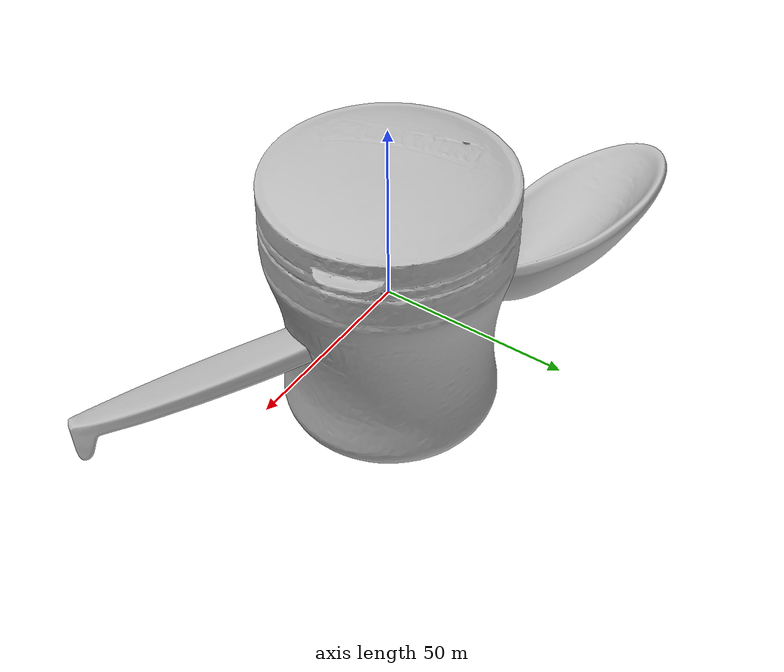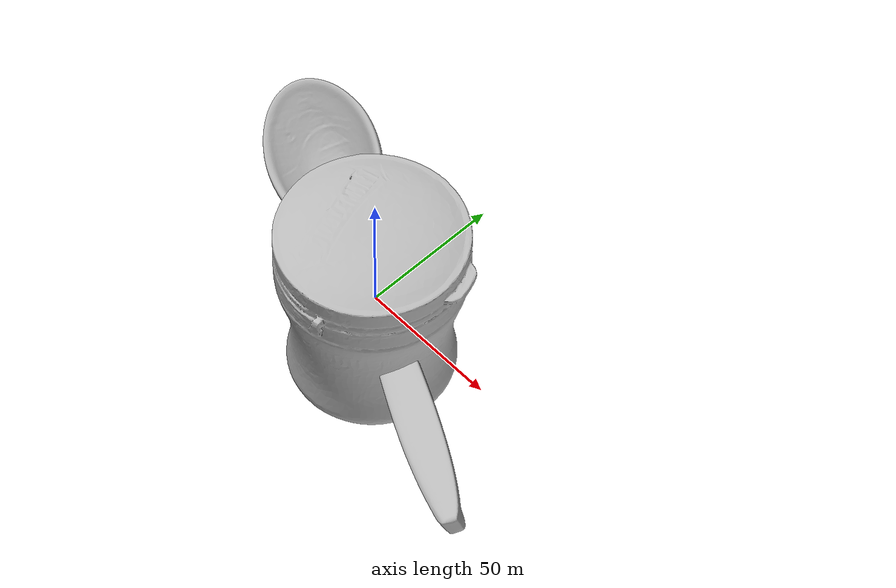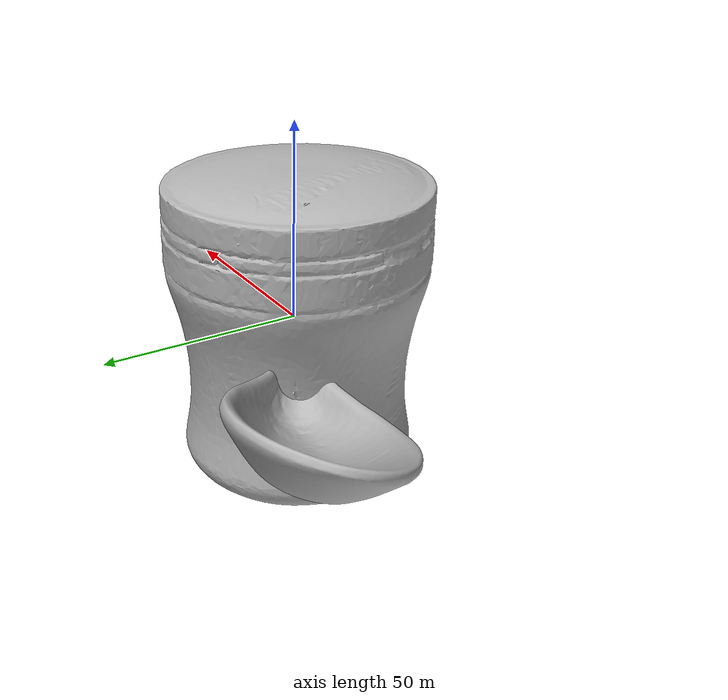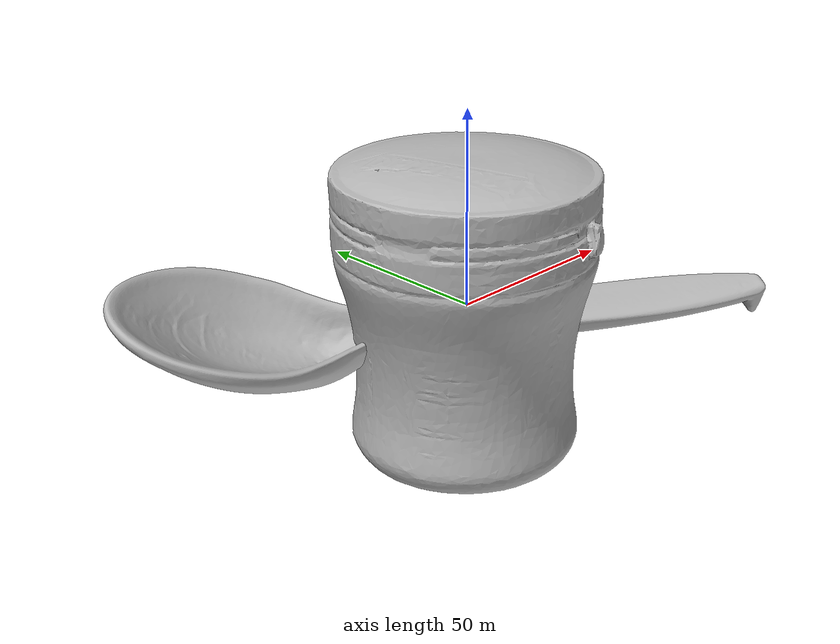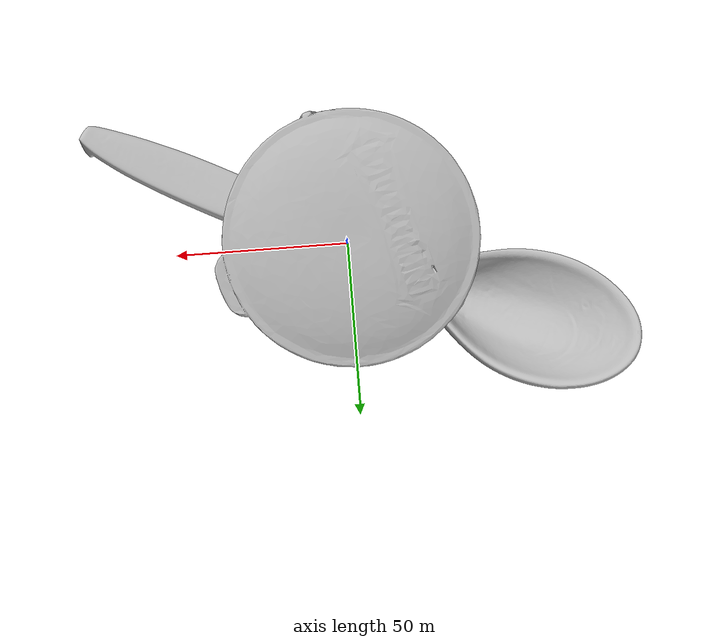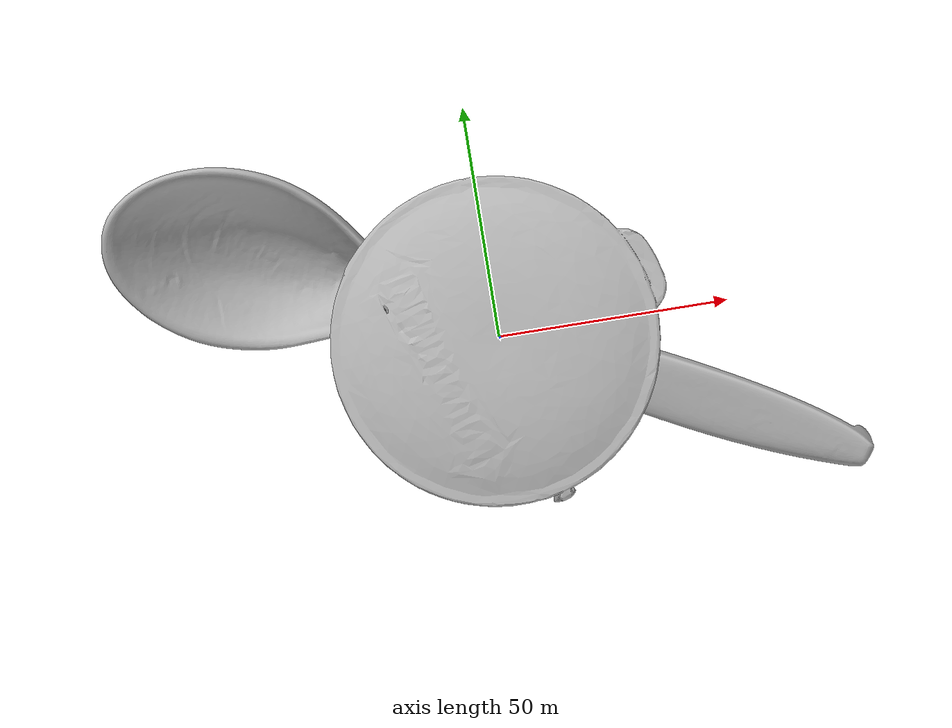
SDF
<sdf version="1.4">
 <world name="default">
  <light name="light1" type="point">
   <pose>0 0 1 0 0 0</pose>
   <diffuse>3 3 3 1</diffuse>
   <specular>3 3 3 1</specular>
  </light>
  <light name="light2" type="point">
   <pose>0 0.5 2 0 0 0</pose>
   <diffuse>1 1 1 1</diffuse>
   <specular>1 1 1 1</specular>
  </light>
  <light name="light3" type="point">
   <pose>0 0.5 2 0 0 0</pose>
   <diffuse>3 3 3 1</diffuse>
   <specular>3 3 3 1</specular>
  </light>
  <scene><ambient>0.7 0.7 0.7</ambient></scene>
  <model name="bottle1">
   <link name="link_bottle1">
    <collision name="default">
     <geometry>
      <mesh><uri>model://green_arrow/collision_meshes/collision.obj</uri><scale>1.0 1.0 1.0</scale></mesh>
     </geometry>
     <surface>
      <friction><ode><mu>0.5</mu><mu2>0.5</mu2></ode></friction>
      <contact><ode><max_vel>0</max_vel><min_depth>0.0001</min_depth><kp>1e8</kp></ode></contact>
     </surface>
    </collision>
    <visual name="default">
     <geometry>
      <mesh><uri>model://green_arrow/visual_meshes/visual.dae</uri><scale>1.0 1.0 1.0</scale></mesh>
     </geometry>
    </visual>
    <inertial>
     <mass>0.31872013211250305</mass>
     <pose>0.0005358478520065546 -0.0008270691032521427 0.002210969803854823 -0.06332250060756175 0.012985582117300467 0.6741007804522225</pose>
     <inertia>
      <ixx>0.00023120124</ixx>
      <iyy>0.000230851</iyy>
      <izz>0.0001492862</izz>
      <ixy>0</ixy>
      <ixz>0</ixz>
      <iyz>0</iyz>
     </inertia>
    </inertial>
   </link>
   <pose>0.048687029629945755 -0.30379530787467957 0.03903084248304367 0.03851800491375175 0.024629492233197044 -1.9643992629102922</pose>
  </model>
  <model name="bottle2">
   <link name="link_bottle2">
    <collision name="default">
     <geometry>
      <mesh><uri>model://pigeon/collision_meshes/collision.obj</uri><scale>1.0 1.0 1.0</scale></mesh>
     </geometry>
     <surface>
      <friction><ode><mu>0.5</mu><mu2>0.5</mu2></ode></friction>
      <contact><ode><max_vel>0</max_vel><min_depth>0.0001</min_depth><kp>1e8</kp></ode></contact>
     </surface>
    </collision>
    <visual name="default">
     <geometry><mesh><uri>model://pigeon/visual_meshes/visual.dae</uri><scale>1.0 1.0 1.0</scale></mesh></geometry>
    </visual>
    <inertial>
     <mass>0.5279804468154907</mass>
     <pose>-9.675472392700613e-05 -0.0001927677367348224 -0.01593620702624321 -0.011704407495178063 -0.0012978199512556723 -0.04198835484465517</pose>
     <inertia>
      <ixx>0.0013198232</ixx>
      <iyy>0.0014089285</iyy>
      <izz>0.000271492</izz>
      <ixy>0</ixy>
      <ixz>0</ixz>
      <iyz>0</iyz>
     </inertia>
    </inertial>
   </link>
   <pose>0.24912244081497192 0.07256945222616196 0.09864645451307297 0.005024309572796868 0.0018165971749170486 1.221134937027898</pose>
  </model>
  <model name="silverware1">
   <link name="link_silverware1">
    <collision name="default">
     <geometry>
      <mesh><uri>model://doraemon_spoon/collision_meshes/collision.obj</uri><scale>1.0 1.0 1.0</scale></mesh>
     </geometry>
     <surface>
      <friction><ode><mu>0.5</mu><mu2>0.5</mu2></ode></friction>
      <contact><ode><max_vel>0</max_vel><min_depth>0.0001</min_depth><kp>1e8</kp></ode></contact>
     </surface>
    </collision>
    <visual name="default">
     <geometry>
      <mesh><uri>model://doraemon_spoon/visual_meshes/visual.dae</uri><scale>1.0 1.0 1.0</scale></mesh>
     </geometry>
    </visual>
    <inertial>
     <mass>0.014849366620182991</mass>
     <pose>-0.022165074944496155 -0.0006374582299031317 -0.0033325457479804754 -0.009146985479672626 0.07380416127774835 -0.014123827206003371</pose>
     <inertia>
      <ixx>1.1631438e-06</ixx>
      <iyy>3.3035012e-05</iyy>
      <izz>3.359665e-05</izz>
      <ixy>0</ixy>
      <ixz>0</ixz>
      <iyz>0</iyz>
     </inertia>
    </inertial>
   </link>
   <pose>0.1741865873336792 0.0007276618853211403 0.01473937276750803 0.2787954337093107 -0.010334961356118787 -0.46457956648837406</pose>
  </model>
  <model name="stationery1">
   <link name="link_stationery1">
    <collision name="default">
     <geometry>
      <mesh><uri>model://correction_fuid/collision_meshes/collision.obj</uri><scale>1.0 1.0 1.0</scale></mesh>
     </geometry>
     <surface>
      <friction><ode><mu>0.5</mu><mu2>0.5</mu2></ode></friction>
      <contact><ode><max_vel>0</max_vel><min_depth>0.0001</min_depth><kp>1e8</kp></ode></contact>
     </surface>
    </collision>
    <visual name="default">
     <geometry>
      <mesh><uri>model://correction_fuid/visual_meshes/visual.dae</uri><scale>1.0 1.0 1.0</scale></mesh>
     </geometry>
    </visual>
    <inertial>
     <mass>0.03422689810395241</mass>
     <pose>-0.00012557733862195164 -0.0009722901741042733 -0.001618212671019137 -0.010846609605282003 0.019488228935667613 -0.015992456651572746</pose>
     <inertia>
      <ixx>3.3149332e-05</ixx>
      <iyy>2.0062398e-06</iyy>
      <izz>3.4012115e-05</izz>
      <ixy>0</ixy>
      <ixz>0</ixz>
      <iyz>0</iyz>
     </inertia>
    </inertial>
   </link>
   <pose>0.05407095327973366 0.1362382173538208 0.009632826782763004 -0.0017272055886529266 -0.0561684481214638 -0.38770181459443376</pose>
  </model>
  <model name="bowl1">
   <link name="link_bowl1">
    <collision name="default">
     <geometry>
      <mesh><uri>model://doraemon_bowl/collision_meshes/collision.obj</uri><scale>1.0 1.0 1.0</scale></mesh>
     </geometry>
     <surface>
      <friction><ode><mu>0.5</mu><mu2>0.5</mu2></ode></friction>
      <contact><ode><max_vel>0</max_vel><min_depth>0.0001</min_depth><kp>1e8</kp></ode></contact>
     </surface>
    </collision>
    <visual name="default">
     <geometry>
      <mesh><uri>model://doraemon_bowl/visual_meshes/visual.dae</uri><scale>1.0 1.0 1.0</scale></mesh>
     </geometry>
    </visual>
    <inertial>
     <mass>0.10659078508615494</mass>
     <pose>-0.014629560522735119 0.00048571196384727955 -0.002086488762870431 -0.00509398386316645 -0.10568401530986889 -0.026426397124795446</pose>
     <inertia>
      <ixx>0.00014780516</ixx>
      <iyy>0.00019451023</iyy>
      <izz>0.00028617028</izz>
      <ixy>0</ixy>
      <ixz>0</ixz>
      <iyz>0</iyz>
     </inertia>
    </inertial>
   </link>
   <pose>0.14297983050346375 0.2025909423828125 0.025905486196279526 0.008593089022581081 0.006343697719798475 -1.4927872903757453</pose>
  </model>
  <model name="cup1">
   <link name="link_cup1">
    <collision name="default">
     <geometry>
      <mesh><uri>model://doraemon_cup/collision_meshes/collision.obj</uri><scale>1.0 1.0 1.0</scale></mesh>
     </geometry>
     <surface>
      <friction><ode><mu>0.5</mu><mu2>0.5</mu2></ode></friction>
      <contact><ode><max_vel>0</max_vel><min_depth>0.0001</min_depth><kp>1e8</kp></ode></contact>
     </surface>
    </collision>
    <visual name="default">
     <geometry>
      <mesh><uri>model://doraemon_cup/visual_meshes/visual.dae</uri><scale>1.0 1.0 1.0</scale></mesh>
     </geometry>
    </visual>
    <inertial>
     <mass>0.07019124925136566</mass>
     <pose>-0.0003292977053206414 -0.0016633619088679552 -0.0022522560320794582 0.19498543632694942 -0.013693723781048914 -0.3205469926711019</pose>
     <inertia>
      <ixx>9.599299e-05</ixx>
      <iyy>9.2830705e-05</iyy>
      <izz>7.5864096e-05</izz>
      <ixy>0</ixy>
      <ixz>0</ixz>
      <iyz>0</iyz>
     </inertia>
    </inertial>
   </link>
   <pose>0.2787083685398102 -0.01478276401758194 0.03546678274869919 -0.8412011986590059 1.2900243458569876 -2.040079680091647</pose>
  </model>
  <model name="plate1">
   <link name="link_plate1">
    <collision name="default">
     <geometry>
      <mesh><uri>model://hello_kitty_plate/collision_meshes/collision.obj</uri><scale>1.0 1.0 1.0</scale></mesh>
     </geometry>
     <surface>
      <friction><ode><mu>0.5</mu><mu2>0.5</mu2></ode></friction>
      <contact><ode><max_vel>0</max_vel><min_depth>0.0001</min_depth><kp>1e8</kp></ode></contact>
     </surface>
    </collision>
    <visual name="default">
     <geometry>
      <mesh><uri>model://hello_kitty_plate/visual_meshes/visual.dae</uri><scale>1.0 1.0 1.0</scale></mesh>
     </geometry>
    </visual>
    <inertial>
     <mass>0.03849242627620697</mass>
     <pose>0.007314295973628759 0.00028937432216480374 -0.0027947183698415756 -0.00010431794154861864 -0.007054443662422379 -0.014449020506613262</pose>
     <inertia>
      <ixx>7.4224925e-05</ixx>
      <iyy>0.00014008483</iyy>
      <izz>0.00021270475</izz>
      <ixy>0</ixy>
      <ixz>0</ixz>
      <iyz>0</iyz>
     </inertia>
    </inertial>
   </link>
   <pose>-0.03711313009262085 -0.318900465965271 0.05101234093308449 0.07351408217760778 -0.539596827124303 0.06615281800481221</pose>
  </model>
  <model name="box4">
   <link name="link_box4">
    <collision name="default">
     <geometry>
      <mesh><uri>model://wooden_puzzle2/collision_meshes/collision.obj</uri><scale>1.0 1.0 1.0</scale></mesh>
     </geometry>
     <surface>
      <friction><ode><mu>0.5</mu><mu2>0.5</mu2></ode></friction>
      <contact><ode><max_vel>0</max_vel><min_depth>0.0001</min_depth><kp>1e8</kp></ode></contact>
     </surface>
    </collision>
    <visual name="default">
     <geometry>
      <mesh><uri>model://wooden_puzzle2/visual_meshes/visual.dae</uri><scale>1.0 1.0 1.0</scale></mesh>
     </geometry>
    </visual>
    <inertial>
     <mass>0.023858843371272087</mass>
     <pose>2.7402536943554878e-05 4.997663199901581e-05 6.587122334167361e-05 -0.1920347142936951 0.6112821219690274 -0.6338705729322873</pose>
     <inertia>
      <ixx>4.4351036e-06</ixx>
      <iyy>4.557319e-06</iyy>
      <izz>4.4924864e-06</izz>
      <ixy>0</ixy>
      <ixz>0</ixz>
      <iyz>0</iyz>
     </inertia>
    </inertial>
   </link>
   <pose>0.16415803134441376 0.12545768916606903 0.01691773347556591 0.02084885929506137 0.0007208200493128362 2.0527400627422154</pose>
  </model>
  <physics type="ode">
   <max_contacts>50</max_contacts>
   <ode>
    <solver><type>quick</type><iters>75</iters></solver>
    <constraints>
     <contact_max_correcting_vel>0</contact_max_correcting_vel>
     <contact_surface_layer>0</contact_surface_layer>
    </constraints>
   </ode>
  </physics>
 </world>
</sdf>
